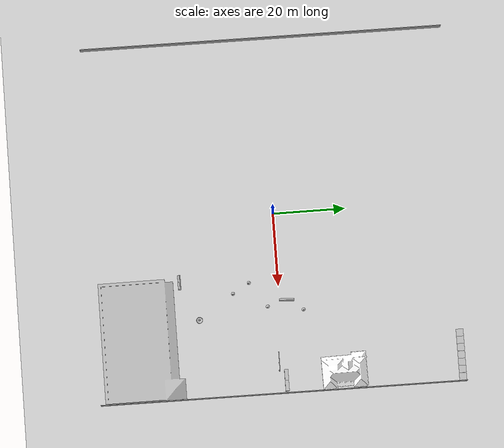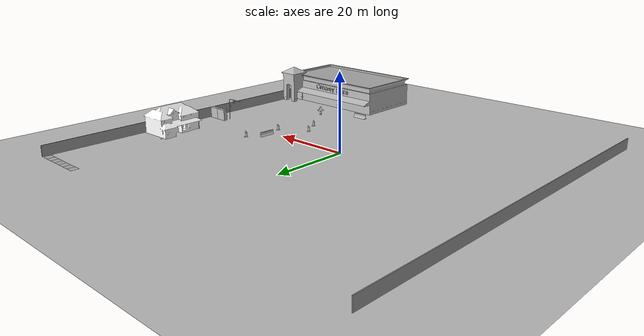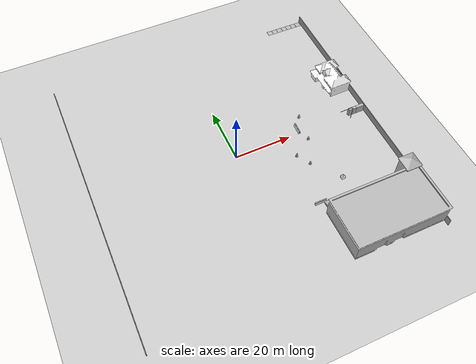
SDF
<sdf version="1.7">
 <world name="default">
  <model name="ground_plane">
   <static>1</static>
   <link name="link">
    <collision name="collision">
     <geometry><plane><normal>0 0 1</normal><size>100 100</size></plane></geometry>
     <surface><friction><ode><mu>100</mu><mu2>50</mu2></ode></friction></surface>
    </collision>
    <visual name="visual">
     <cast_shadows>0</cast_shadows>
     <geometry><plane><normal>0 0 1</normal><size>100 100</size></plane></geometry>
     <material>
      <script><uri>file://media/materials/scripts/gazebo.material</uri><name>Gazebo/Grey</name></script>
     </material>
    </visual>
    <velocity_decay><linear>0</linear><angular>0</angular></velocity_decay>
   </link>
  </model>
  <model name="Construction Barrel_1">
   <link name="link">
    <inertial>
     <pose>0 0 0.4 0 -0 0</pose>
     <mass>500</mass>
     <inertia><ixx>51.2096</ixx><iyy>51.2096</iyy><izz>25</izz><ixy>0</ixy><ixz>0</ixz><iyz>0</iyz></inertia>
    </inertial>
    <collision name="collision">
     <geometry><mesh><uri>model://construction_barrel/meshes/construction_barrel.dae</uri></mesh></geometry>
    </collision>
    <visual name="visual">
     <geometry><mesh><uri>model://construction_barrel/meshes/construction_barrel.dae</uri></mesh></geometry>
    </visual>
    <velocity_decay><linear>0</linear><angular>0</angular></velocity_decay>
   </link>
   <pose>18.6086 -7.99802 -0 0 -0 0.283131</pose>
   <static>0</static>
  </model>
  <model name="Construction Barrel_4">
   <link name="link">
    <inertial>
     <pose>0 0 0.4 0 -0 0</pose>
     <mass>500</mass>
     <inertia><ixx>51.2096</ixx><iyy>51.2096</iyy><izz>25</izz><ixy>0</ixy><ixz>0</ixz><iyz>0</iyz></inertia>
    </inertial>
    <collision name="collision">
     <geometry><mesh><uri>model://construction_barrel/meshes/construction_barrel.dae</uri></mesh></geometry>
    </collision>
    <visual name="visual">
     <geometry><mesh><uri>model://construction_barrel/meshes/construction_barrel.dae</uri></mesh></geometry>
    </visual>
    <velocity_decay><linear>0</linear><angular>0</angular></velocity_decay>
   </link>
   <pose>25.4899 -3.31504 -0 2e-06 -7e-06 -0.10884</pose>
   <static>0</static>
  </model>
  <model name="Construction Barrel_12">
   <link name="link">
    <inertial>
     <pose>0 0 0.4 0 -0 0</pose>
     <mass>500</mass>
     <inertia><ixx>51.2096</ixx><iyy>51.2096</iyy><izz>25</izz><ixy>0</ixy><ixz>0</ixz><iyz>0</iyz></inertia>
    </inertial>
    <collision name="collision">
     <geometry><mesh><uri>model://construction_barrel/meshes/construction_barrel.dae</uri></mesh></geometry>
    </collision>
    <visual name="visual">
     <geometry><mesh><uri>model://construction_barrel/meshes/construction_barrel.dae</uri></mesh></geometry>
    </visual>
    <velocity_decay><linear>0</linear><angular>0</angular></velocity_decay>
   </link>
   <pose>26.9999 6.44791 0 0 0 -0.001363</pose>
   <static>0</static>
  </model>
  <model name="Construction Barrel_13">
   <link name="link">
    <inertial>
     <pose>0 0 0.4 0 -0 0</pose>
     <mass>500</mass>
     <inertia><ixx>51.2096</ixx><iyy>51.2096</iyy><izz>25</izz><ixy>0</ixy><ixz>0</ixz><iyz>0</iyz></inertia>
    </inertial>
    <collision name="collision">
     <geometry><mesh><uri>model://construction_barrel/meshes/construction_barrel.dae</uri></mesh></geometry>
    </collision>
    <visual name="visual">
     <geometry><mesh><uri>model://construction_barrel/meshes/construction_barrel.dae</uri></mesh></geometry>
    </visual>
    <velocity_decay><linear>0</linear><angular>0</angular></velocity_decay>
   </link>
   <pose>21.2828 -12.5421 -0 -0 -0 -0.399051</pose>
   <static>0</static>
  </model>
  <model name="jersey_barrier_3">
   <static>1</static>
   <link name="link">
    <visual name="visual">
     <geometry><mesh><uri>model://jersey_barrier/meshes/jersey_barrier.dae</uri></mesh></geometry>
    </visual>
    <collision name="upright">
     <pose>0 0 0.5715 0 -0 0</pose>
     <geometry><box><size>4.06542 0.3063 1.143</size></box></geometry>
    </collision>
    <collision name="base">
     <pose>0 0 0.032258 0 -0 0</pose>
     <geometry><box><size>4.06542 0.8107 0.064516</size></box></geometry>
    </collision>
    <collision name="base2">
     <pose>0 0 0.1 0 -0 0</pose>
     <geometry><box><size>4.06542 0.65 0.1</size></box></geometry>
    </collision>
    <collision name="base3">
     <pose>0 0 0.2 0 -0 0</pose>
     <geometry><box><size>4.06542 0.5 0.1</size></box></geometry>
    </collision>
    <collision name="left-angle">
     <pose>0 -0.224 0.2401 0.9 -0 0</pose>
     <geometry><box><size>4.06542 0.5 0.064516</size></box></geometry>
    </collision>
    <collision name="right-angle">
     <pose>0 0.224 0.2401 -0.9 0 0</pose>
     <geometry><box><size>4.06542 0.5 0.064516</size></box></geometry>
    </collision>
    <velocity_decay><linear>0</linear><angular>0</angular></velocity_decay>
   </link>
   <pose>17.1422 -27.0645 0 0 -0 0</pose>
  </model>
  <model name="jersey_barrier_4">
   <static>1</static>
   <link name="link">
    <visual name="visual">
     <geometry><mesh><uri>model://jersey_barrier/meshes/jersey_barrier.dae</uri></mesh></geometry>
    </visual>
    <collision name="upright">
     <pose>0 0 0.5715 0 -0 0</pose>
     <geometry><box><size>4.06542 0.3063 1.143</size></box></geometry>
    </collision>
    <collision name="base">
     <pose>0 0 0.032258 0 -0 0</pose>
     <geometry><box><size>4.06542 0.8107 0.064516</size></box></geometry>
    </collision>
    <collision name="base2">
     <pose>0 0 0.1 0 -0 0</pose>
     <geometry><box><size>4.06542 0.65 0.1</size></box></geometry>
    </collision>
    <collision name="base3">
     <pose>0 0 0.2 0 -0 0</pose>
     <geometry><box><size>4.06542 0.5 0.1</size></box></geometry>
    </collision>
    <collision name="left-angle">
     <pose>0 -0.224 0.2401 0.9 -0 0</pose>
     <geometry><box><size>4.06542 0.5 0.064516</size></box></geometry>
    </collision>
    <collision name="right-angle">
     <pose>0 0.224 0.2401 -0.9 0 0</pose>
     <geometry><box><size>4.06542 0.5 0.064516</size></box></geometry>
    </collision>
    <velocity_decay><linear>0</linear><angular>0</angular></velocity_decay>
   </link>
   <pose>24 2 0 0 -0 1.52298</pose>
  </model>
  <model name="grey_wall_0">
   <link name="link">
    <pose>-13.2437 -9.79946 1.4 0 -0 0</pose>
    <inertial>
     <inertia><ixx>0</ixx><ixy>0</ixy><ixz>0</ixz><iyy>0</iyy><iyz>0</iyz><izz>0</izz></inertia>
     <mass>0</mass>
    </inertial>
    <visual name="visual">
     <cast_shadows>0</cast_shadows>
     <geometry><box><size>100.154 0.2 2.8</size></box></geometry>
     <material>
      <script>
       <uri>model://grey_wall/materials/scripts</uri>
       <uri>model://grey_wall/materials/textures</uri>
       <name>vrc/grey_wall</name>
      </script>
      <shader type="pixel"/>
     </material>
    </visual>
    <collision name="collision">
     <geometry><box><size>100.154 0.2 2.8</size></box></geometry>
     <surface>
      <friction>
       <ode><mu>1</mu><mu2>1</mu2><fdir1>0 0 0</fdir1><slip1>0</slip1><slip2>0</slip2></ode>
       <torsional>
        <coefficient>1</coefficient>
        <patch_radius>0</patch_radius>
        <surface_radius>0</surface_radius>
        <use_patch_radius>1</use_patch_radius>
        <ode><slip>0</slip></ode>
       </torsional>
      </friction>
      <bounce><restitution_coefficient>0</restitution_coefficient><threshold>1e+06</threshold></bounce>
      <contact>
       <collide_without_contact>0</collide_without_contact>
       <collide_without_contact_bitmask>1</collide_without_contact_bitmask>
       <collide_bitmask>1</collide_bitmask>
       <ode>
        <soft_cfm>0</soft_cfm>
        <soft_erp>0.2</soft_erp>
        <kp>1e+13</kp>
        <kd>1</kd>
        <max_vel>0.01</max_vel>
        <min_depth>0</min_depth>
       </ode>
       <bullet>
        <split_impulse>1</split_impulse>
        <split_impulse_penetration_threshold>-0.01</split_impulse_penetration_threshold>
        <soft_cfm>0</soft_cfm>
        <soft_erp>0.2</soft_erp>
        <kp>1e+13</kp>
        <kd>1</kd>
       </bullet>
      </contact>
     </surface>
    </collision>
   </link>
   <link name="link_clone">
    <pose>-13.0713 88.7514 1.4 0 -0 0</pose>
    <inertial>
     <inertia><ixx>0</ixx><ixy>0</ixy><ixz>0</ixz><iyy>0</iyy><iyz>0</iyz><izz>0</izz></inertia>
     <mass>0</mass>
    </inertial>
    <visual name="visual">
     <cast_shadows>0</cast_shadows>
     <geometry><box><size>100.154 0.2 2.8</size></box></geometry>
     <material>
      <script>
       <uri>model://grey_wall/materials/scripts</uri>
       <uri>model://grey_wall/materials/textures</uri>
       <name>vrc/grey_wall</name>
      </script>
      <shader type="pixel"/>
     </material>
    </visual>
    <collision name="collision">
     <geometry><box><size>100.154 0.2 2.8</size></box></geometry>
     <surface>
      <friction>
       <ode><mu>1</mu><mu2>1</mu2><fdir1>0 0 0</fdir1><slip1>0</slip1><slip2>0</slip2></ode>
       <torsional>
        <coefficient>1</coefficient>
        <patch_radius>0</patch_radius>
        <surface_radius>0</surface_radius>
        <use_patch_radius>1</use_patch_radius>
        <ode><slip>0</slip></ode>
       </torsional>
      </friction>
      <bounce><restitution_coefficient>0</restitution_coefficient><threshold>1e+06</threshold></bounce>
      <contact>
       <collide_without_contact>0</collide_without_contact>
       <collide_without_contact_bitmask>1</collide_without_contact_bitmask>
       <collide_bitmask>1</collide_bitmask>
       <ode>
        <soft_cfm>0</soft_cfm>
        <soft_erp>0.2</soft_erp>
        <kp>1e+13</kp>
        <kd>1</kd>
        <max_vel>0.01</max_vel>
        <min_depth>0</min_depth>
       </ode>
       <bullet>
        <split_impulse>1</split_impulse>
        <split_impulse_penetration_threshold>-0.01</split_impulse_penetration_threshold>
        <soft_cfm>0</soft_cfm>
        <soft_erp>0.2</soft_erp>
        <kp>1e+13</kp>
        <kd>1</kd>
       </bullet>
      </contact>
     </surface>
    </collision>
   </link>
   <static>1</static>
   <pose>39.8304 12.7853 0 0 -0 1.56578</pose>
  </model>
  <model name="brick_box_3x1x3">
   <link name="chassis">
    <pose>-5.91797 0 1.5 0 -0 0</pose>
    <inertial>
     <inertia><ixx>0</ixx><ixy>0</ixy><ixz>0</ixz><iyy>0</iyy><iyz>0</iyz><izz>0</izz></inertia>
     <mass>0</mass>
    </inertial>
    <visual name="visual">
     <geometry><mesh><uri>model://brick_box_3x1x3/meshes/simple_box.dae</uri><scale>3 1 3</scale></mesh></geometry>
     <material>
      <script>
       <uri>model://brick_box_3x1x3/materials/scripts</uri>
       <uri>model://brick_box_3x1x3/materials/textures</uri>
       <name>BrickBox/Diffuse</name>
      </script>
      <shader type="pixel"/>
     </material>
    </visual>
    <collision name="collision">
     <geometry><box><size>14.9898 1 3</size></box></geometry>
     <surface>
      <friction>
       <ode><mu>1</mu><mu2>1</mu2><fdir1>0 0 0</fdir1><slip1>0</slip1><slip2>0</slip2></ode>
       <torsional>
        <coefficient>1</coefficient>
        <patch_radius>0</patch_radius>
        <surface_radius>0</surface_radius>
        <use_patch_radius>1</use_patch_radius>
        <ode><slip>0</slip></ode>
       </torsional>
      </friction>
      <bounce><restitution_coefficient>0</restitution_coefficient><threshold>1e+06</threshold></bounce>
      <contact>
       <collide_without_contact>0</collide_without_contact>
       <collide_without_contact_bitmask>1</collide_without_contact_bitmask>
       <collide_bitmask>1</collide_bitmask>
       <ode>
        <soft_cfm>0</soft_cfm>
        <soft_erp>0.2</soft_erp>
        <kp>1e+13</kp>
        <kd>1</kd>
        <max_vel>0.01</max_vel>
        <min_depth>0</min_depth>
       </ode>
       <bullet>
        <split_impulse>1</split_impulse>
        <split_impulse_penetration_threshold>-0.01</split_impulse_penetration_threshold>
        <soft_cfm>0</soft_cfm>
        <soft_erp>0.2</soft_erp>
        <kp>1e+13</kp>
        <kd>1</kd>
       </bullet>
      </contact>
     </surface>
    </collision>
   </link>
   <static>1</static>
   <pose>50.6647 0.38851 0 0 -0 0</pose>
  </model>
  <model name="brick_box_3x1x3_0">
   <link name="chassis">
    <pose>-5.91797 0 1.5 0 -0 0</pose>
    <inertial>
     <inertia><ixx>0</ixx><ixy>0</ixy><ixz>0</ixz><iyy>0</iyy><iyz>0</iyz><izz>0</izz></inertia>
     <mass>0</mass>
    </inertial>
    <visual name="visual">
     <geometry><mesh><uri>model://brick_box_3x1x3/meshes/simple_box.dae</uri><scale>3 1 3</scale></mesh></geometry>
     <material>
      <script>
       <uri>model://brick_box_3x1x3/materials/scripts</uri>
       <uri>model://brick_box_3x1x3/materials/textures</uri>
       <name>BrickBox/Diffuse</name>
      </script>
      <shader type="pixel"/>
     </material>
    </visual>
    <collision name="collision">
     <geometry><box><size>14.9898 1 3</size></box></geometry>
     <surface>
      <friction>
       <ode><mu>1</mu><mu2>1</mu2><fdir1>0 0 0</fdir1><slip1>0</slip1><slip2>0</slip2></ode>
       <torsional>
        <coefficient>1</coefficient>
        <patch_radius>0</patch_radius>
        <surface_radius>0</surface_radius>
        <use_patch_radius>1</use_patch_radius>
        <ode><slip>0</slip></ode>
       </torsional>
      </friction>
      <bounce><restitution_coefficient>0</restitution_coefficient><threshold>1e+06</threshold></bounce>
      <contact>
       <collide_without_contact>0</collide_without_contact>
       <collide_without_contact_bitmask>1</collide_without_contact_bitmask>
       <collide_bitmask>1</collide_bitmask>
       <ode>
        <soft_cfm>0</soft_cfm>
        <soft_erp>0.2</soft_erp>
        <kp>1e+13</kp>
        <kd>1</kd>
        <max_vel>0.01</max_vel>
        <min_depth>0</min_depth>
       </ode>
       <bullet>
        <split_impulse>1</split_impulse>
        <split_impulse_penetration_threshold>-0.01</split_impulse_penetration_threshold>
        <soft_cfm>0</soft_cfm>
        <soft_erp>0.2</soft_erp>
        <kp>1e+13</kp>
        <kd>1</kd>
       </bullet>
      </contact>
     </surface>
    </collision>
   </link>
   <static>1</static>
   <pose>53.5105 0.380869 0 0 -0 0</pose>
  </model>
  <model name="checkerboard_plane">
   <static>1</static>
   <link name="link">
    <visual name="visual">
     <geometry><mesh><uri>model://checkerboard_plane/meshes/checkerboard_plane.dae</uri></mesh></geometry>
    </visual>
   </link>
   <pose>48.5545 48.4965 0 0 -0 0</pose>
  </model>
  <model name="checkerboard_plane_0">
   <static>1</static>
   <link name="link">
    <visual name="visual">
     <geometry><mesh><uri>model://checkerboard_plane/meshes/checkerboard_plane.dae</uri></mesh></geometry>
    </visual>
   </link>
   <pose>46.5035 48.5374 0 0 -0 0</pose>
  </model>
  <model name="checkerboard_plane_1">
   <static>1</static>
   <link name="link">
    <visual name="visual">
     <geometry><mesh><uri>model://checkerboard_plane/meshes/checkerboard_plane.dae</uri></mesh></geometry>
    </visual>
   </link>
   <pose>44.5556 48.5342 0 0 -0 0</pose>
  </model>
  <model name="checkerboard_plane_2">
   <static>1</static>
   <link name="link">
    <visual name="visual">
     <geometry><mesh><uri>model://checkerboard_plane/meshes/checkerboard_plane.dae</uri></mesh></geometry>
    </visual>
   </link>
   <pose>42.5717 48.5646 0 0 -0 0</pose>
  </model>
  <model name="checkerboard_plane_3">
   <static>1</static>
   <link name="link">
    <visual name="visual">
     <geometry><mesh><uri>model://checkerboard_plane/meshes/checkerboard_plane.dae</uri></mesh></geometry>
    </visual>
   </link>
   <pose>40.5182 48.5693 0 0 -0 0</pose>
  </model>
  <model name="checkerboard_plane_4">
   <static>1</static>
   <link name="link">
    <visual name="visual">
     <geometry><mesh><uri>model://checkerboard_plane/meshes/checkerboard_plane.dae</uri></mesh></geometry>
    </visual>
   </link>
   <pose>38.5281 48.5787 0 0 -0 0</pose>
  </model>
  <model name="checkerboard_plane_5">
   <static>1</static>
   <link name="link">
    <visual name="visual">
     <geometry><mesh><uri>model://checkerboard_plane/meshes/checkerboard_plane.dae</uri></mesh></geometry>
    </visual>
   </link>
   <pose>36.53 48.5831 0 0 -0 0</pose>
  </model>
  <model name="grocery_store">
   <static>1</static>
   <link name="link">
    <collision name="collision">
     <pose>0 0 4.04605 0 -0 0</pose>
     <geometry><box><size>32.1985 17.5425 8.09209</size></box></geometry>
    </collision>
    <visual name="visual">
     <pose>0 -1.96155 0 0 -0 0</pose>
     <geometry><mesh><uri>model://grocery_store/meshes/grocery_store.dae</uri></mesh></geometry>
    </visual>
   </link>
   <pose>33.084 -39.8794 0 0 -0 0</pose>
  </model>
  <model name="fountain">
   <static>1</static>
   <link name="link">
    <collision name="collision">
     <geometry><mesh><uri>model://fountain/meshes/fountain.dae</uri></mesh></geometry>
    </collision>
    <visual name="visual">
     <geometry><mesh><uri>model://fountain/meshes/fountain.dae</uri></mesh></geometry>
    </visual>
   </link>
   <pose>27.9981 -22.1966 0 0 -0 0</pose>
  </model>
  <model name="House 2">
   <static>1</static>
   <link name="link">
    <collision name="collision">
     <geometry><mesh><uri>model://house_2/meshes/house_2.dae</uri><scale>1.5 1.5 1.5</scale></mesh></geometry>
    </collision>
    <visual name="visual">
     <geometry><mesh><uri>model://house_2/meshes/house_2.dae</uri><scale>1.5 1.5 1.5</scale></mesh></geometry>
     <material>
      <script>
       <uri>model://house_2/materials/scripts</uri>
       <uri>model://house_2/materials/textures</uri>
       <uri>model://house_1/materials/textures</uri>
       <name>House_2/Diffuse</name>
      </script>
      <shader type="normal_map_tangent_space">
       <normal_map>model://house_1/materials/textures/House_1_Normal.png</normal_map>
      </shader>
     </material>
    </visual>
   </link>
   <pose>45.5179 15.2243 0 0 -0 1.58516</pose>
  </model>
  <model name="stop_light_post">
   <static>1</static>
   <link name="link">
    <collision name="post">
     <geometry>
      <mesh><uri>model://stop_light_post/meshes/stop_light_post.obj</uri><scale>0.01 0.01 0.01</scale></mesh>
     </geometry>
    </collision>
    <visual name="post">
     <geometry>
      <mesh><uri>model://stop_light_post/meshes/stop_light_post.obj</uri><scale>0.01 0.01 0.01</scale></mesh>
     </geometry>
    </visual>
   </link>
   <frame name="right_light::__model__" attached_to="right_light::link">
    <pose relative_to="__model__">0 -0.05 4 0 -0 0</pose>
   </frame>
   <static>1</static>
   <link name="right_light::link">
    <collision name="collision">
     <geometry>
      <mesh><uri>model://stop_light/meshes/stop_light.obj</uri><scale>0.01 0.01 0.01</scale></mesh>
     </geometry>
    </collision>
    <visual name="frame">
     <geometry>
      <mesh><uri>model://stop_light/meshes/stop_light.obj</uri><scale>0.01 0.01 0.01</scale></mesh>
     </geometry>
    </visual>
    <visual name="red">
     <pose>-0.001123 -0.082251 -0.147514 0 -0 0</pose>
     <geometry><sphere><radius>0.1012</radius></sphere></geometry>
     <material>
      <script>
       <uri>model://stop_light/materials/scripts/</uri>
       <uri>model://stop_light/materials/textures/</uri>
       <name>StopLight/Light</name>
      </script>
      <ambient>1 0 0 1</ambient>
      <specular>1 0 0 1</specular>
     </material>
    </visual>
    <visual name="yellow">
     <pose>-0.001123 -0.082251 -0.402 0 -0 0</pose>
     <geometry><sphere><radius>0.1012</radius></sphere></geometry>
     <material>
      <script>
       <uri>model://stop_light/materials/scripts/</uri>
       <uri>model://stop_light/materials/textures/</uri>
       <name>StopLight/Light</name>
      </script>
      <ambient>1 1 0 1</ambient>
      <specular>1 1 0 1</specular>
     </material>
    </visual>
    <visual name="green">
     <pose>-0.001123 -0.082251 -0.655 0 -0 0</pose>
     <geometry><sphere><radius>0.1012</radius></sphere></geometry>
     <material>
      <script>
       <uri>model://stop_light/materials/scripts/</uri>
       <uri>model://stop_light/materials/textures/</uri>
       <name>StopLight/Light</name>
      </script>
      <ambient>0 1 0 1</ambient>
      <specular>0 1 0 1</specular>
     </material>
    </visual>
    <pose relative_to="right_light::__model__">0 0 0 0 -0 0</pose>
   </link>
   <frame name="center_light::__model__" attached_to="center_light::link">
    <pose relative_to="__model__">-2 0.04 5.82 0 -0 0</pose>
   </frame>
   <static>1</static>
   <link name="center_light::link">
    <collision name="collision">
     <geometry>
      <mesh><uri>model://stop_light/meshes/stop_light.obj</uri><scale>0.01 0.01 0.01</scale></mesh>
     </geometry>
    </collision>
    <visual name="frame">
     <geometry>
      <mesh><uri>model://stop_light/meshes/stop_light.obj</uri><scale>0.01 0.01 0.01</scale></mesh>
     </geometry>
    </visual>
    <visual name="red">
     <pose>-0.001123 -0.082251 -0.147514 0 -0 0</pose>
     <geometry><sphere><radius>0.1012</radius></sphere></geometry>
     <material>
      <script>
       <uri>model://stop_light/materials/scripts/</uri>
       <uri>model://stop_light/materials/textures/</uri>
       <name>StopLight/Light</name>
      </script>
      <ambient>1 0 0 1</ambient>
      <specular>1 0 0 1</specular>
     </material>
    </visual>
    <visual name="yellow">
     <pose>-0.001123 -0.082251 -0.402 0 -0 0</pose>
     <geometry><sphere><radius>0.1012</radius></sphere></geometry>
     <material>
      <script>
       <uri>model://stop_light/materials/scripts/</uri>
       <uri>model://stop_light/materials/textures/</uri>
       <name>StopLight/Light</name>
      </script>
      <ambient>1 1 0 1</ambient>
      <specular>1 1 0 1</specular>
     </material>
    </visual>
    <visual name="green">
     <pose>-0.001123 -0.082251 -0.655 0 -0 0</pose>
     <geometry><sphere><radius>0.1012</radius></sphere></geometry>
     <material>
      <script>
       <uri>model://stop_light/materials/scripts/</uri>
       <uri>model://stop_light/materials/textures/</uri>
       <name>StopLight/Light</name>
      </script>
      <ambient>0 1 0 1</ambient>
      <specular>0 1 0 1</specular>
     </material>
    </visual>
    <pose relative_to="center_light::__model__">0 0 0 0 -0 0</pose>
   </link>
   <pose>43.4506 -1.30272 0 0 -0 0</pose>
  </model>
 </world>
</sdf>
